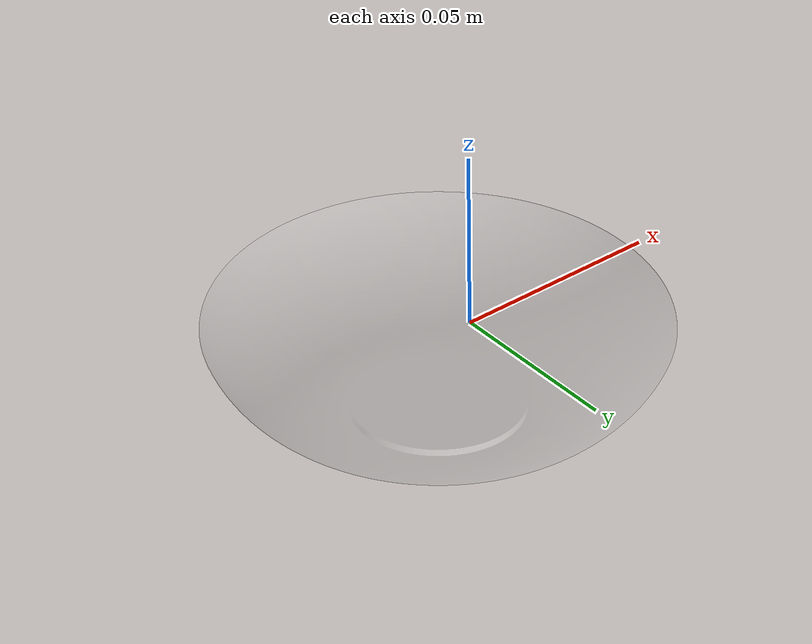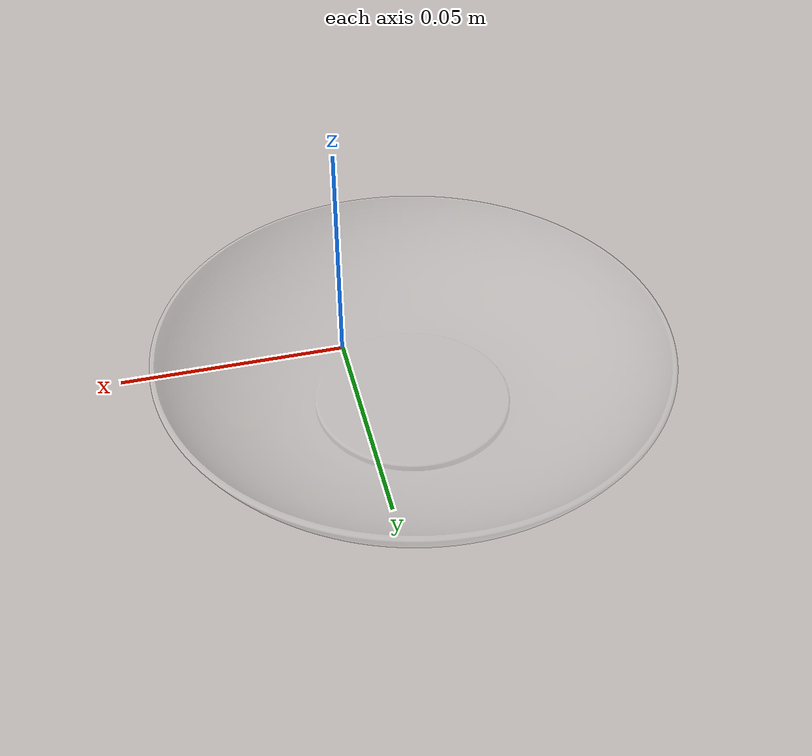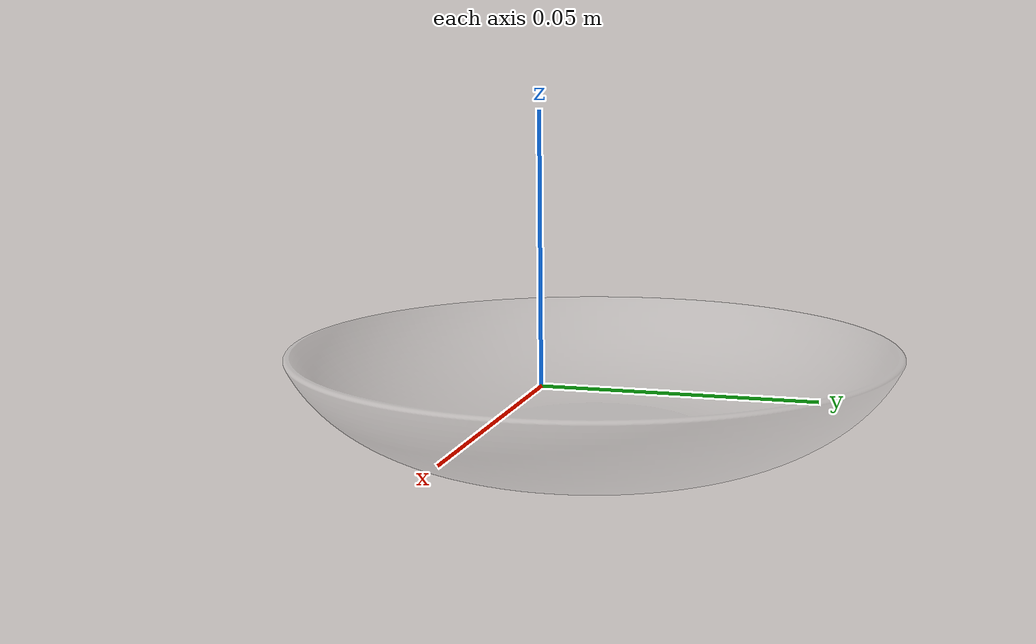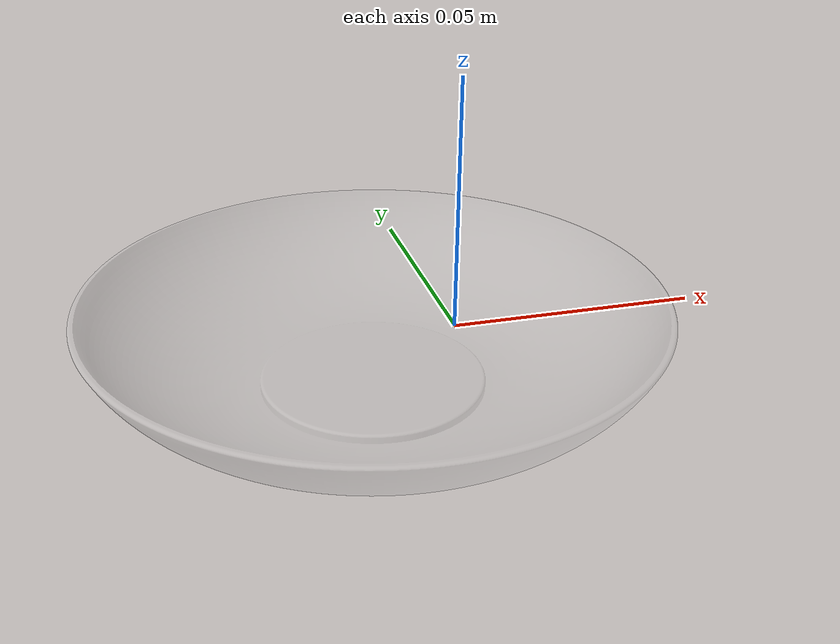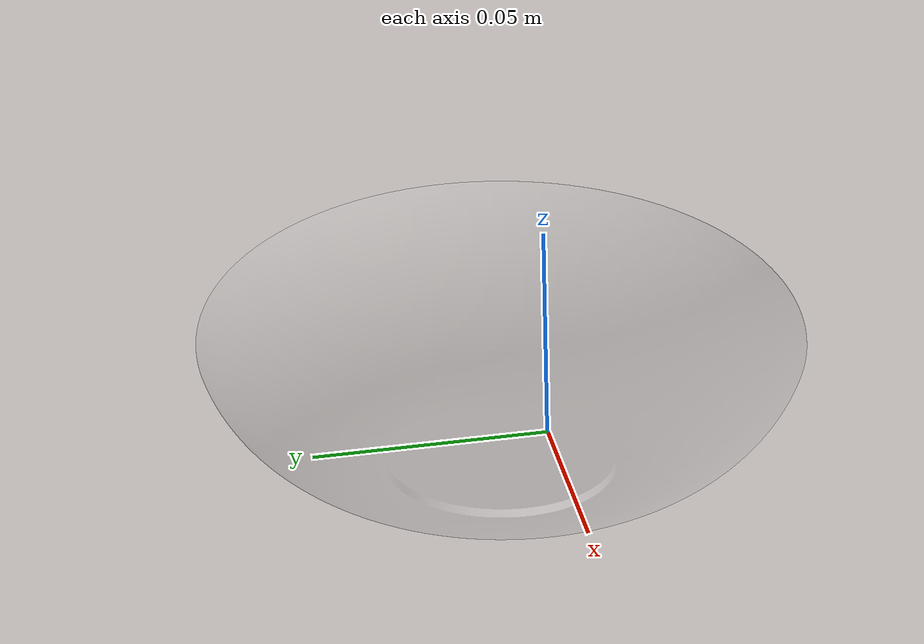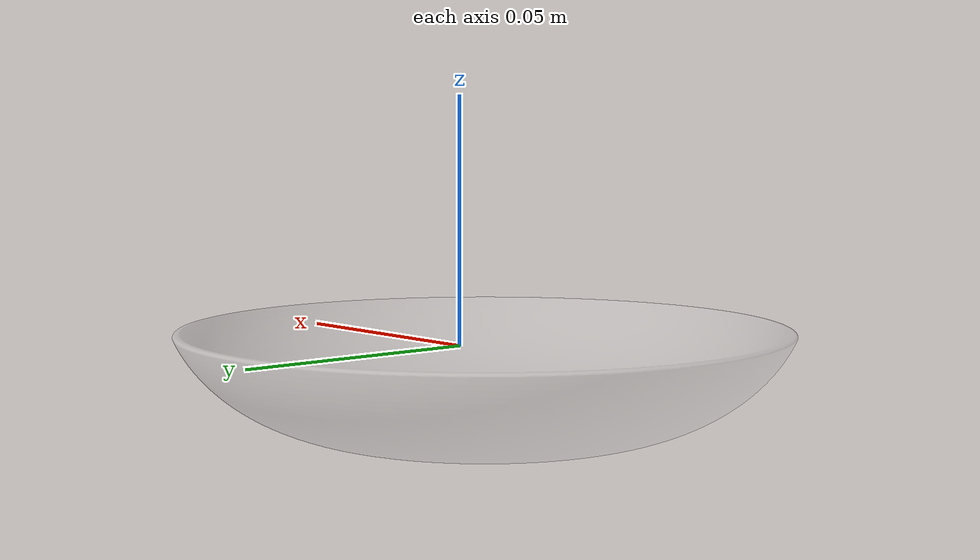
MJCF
<mujoco model="dish1">
  <asset>
    <mesh file="meshes/dish1/dish1.stl" name="dish1_mesh" scale="0.9 0.9 0.9"/>
  </asset>
  <worldbody>
    <body>
      <body name="object">
        <geom pos="0 0 0" mesh="dish1_mesh" type="mesh" rgba="0.8 0.8 0.8 0.3"  conaffinity="0" contype="0"  group="1" mass="0.0001"/>
      </body>
      <site rgba="0 0 0 0" size="0.005" pos="0 0 -0.085" name="bottom_site"/>
      <site rgba="0 0 0 0" size="0.005" pos="0 0 0.075" name="top_site"/>
      <site rgba="0 0 0 0" size="0.005" pos="0.025 0.025 0" name="horizontal_radius_site"/>
    </body>
  </worldbody>
</mujoco>
